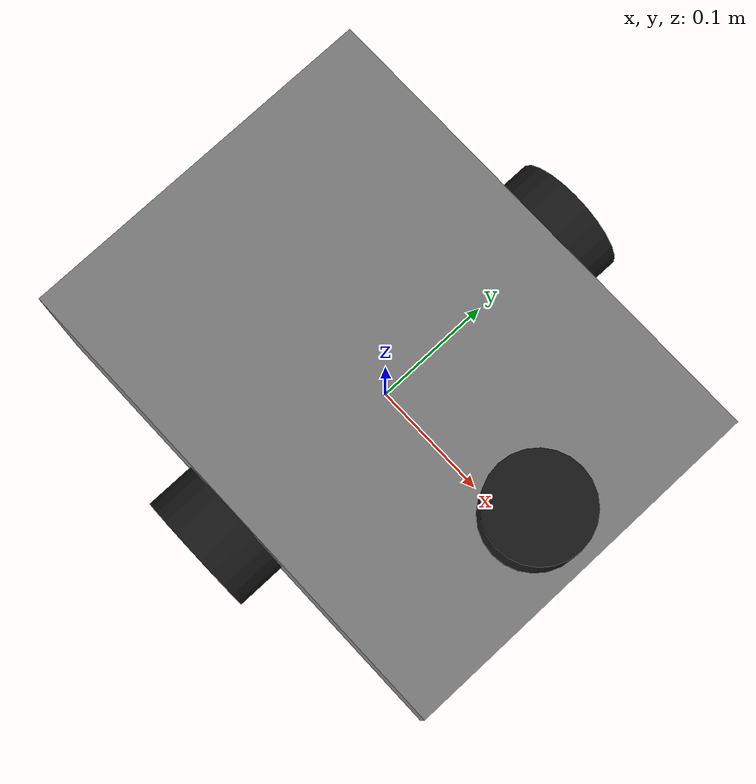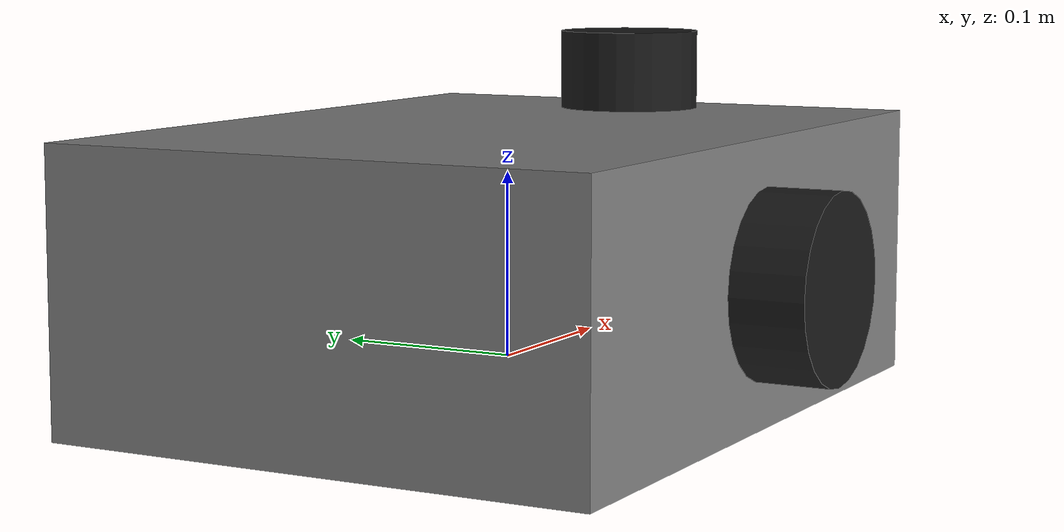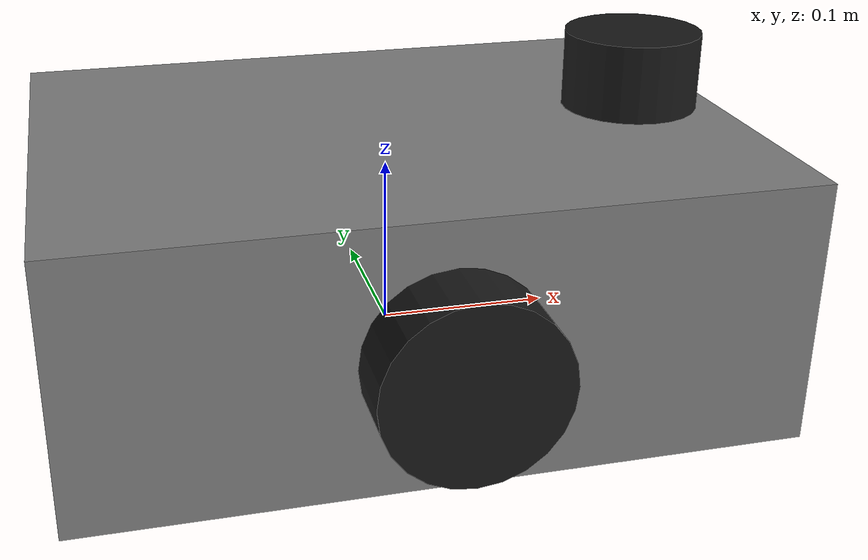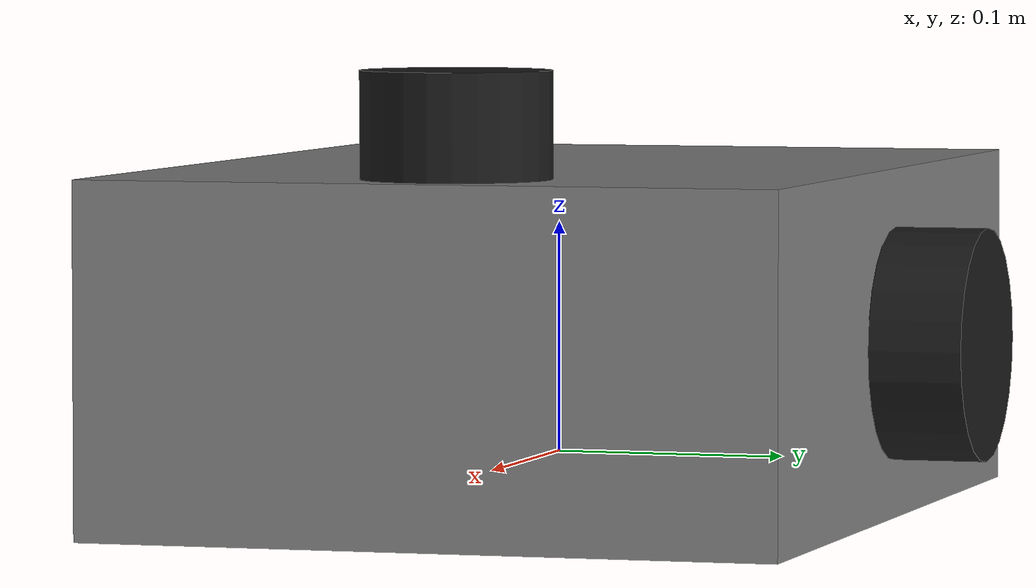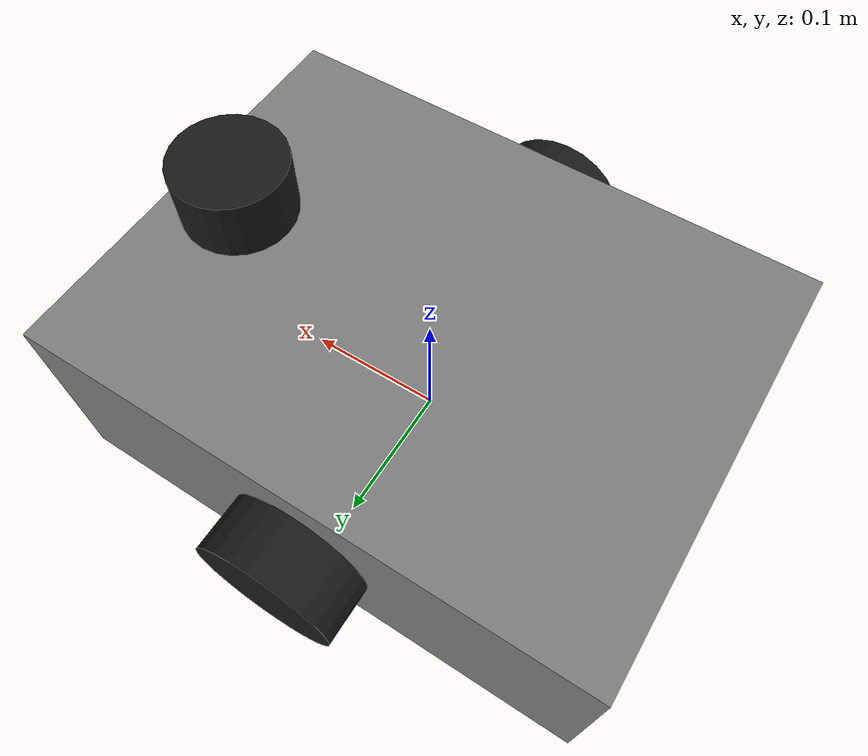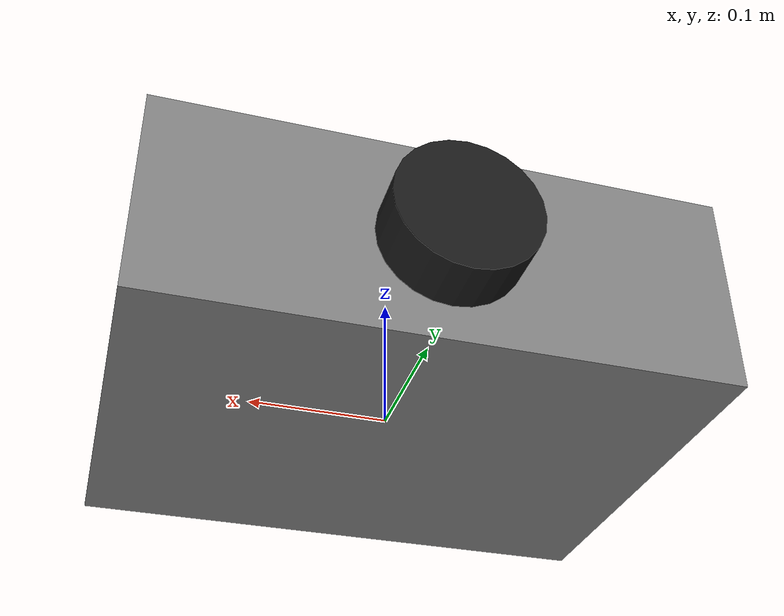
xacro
<?xml version="1.0"?>
<robot xmlns:xacro="http://www.ros.org/wiki/xacro" name="amr_robot">

  <xacro:include filename="$(find amr_description)/urdf/base.xacro"/>
  <xacro:include filename="$(find amr_description)/urdf/lidar.xacro"/>
  <xacro:include filename="$(find amr_description)/urdf/imu.xacro"/>

  <!-- Base properties -->
  <xacro:property name="base_width"  value="0.30"/>
  <xacro:property name="base_length" value="0.40"/>
  <xacro:property name="base_height" value="0.15"/>
  <xacro:property name="wheel_radius" value="0.05"/>
  <xacro:property name="wheel_width"  value="0.04"/>

  <!-- Base link -->
  <link name="base_footprint"/>

  <joint name="base_joint" type="fixed">
    <parent link="base_footprint"/>
    <child link="base_link"/>
    <origin xyz="0 0 ${wheel_radius}" rpy="0 0 0"/>
  </joint>

  <link name="base_link">
    <visual>
      <geometry>
        <box size="${base_length} ${base_width} ${base_height}"/>
      </geometry>
      <material name="grey"><color rgba="0.5 0.5 0.5 1"/></material>
    </visual>
    <collision>
      <geometry>
        <box size="${base_length} ${base_width} ${base_height}"/>
      </geometry>
    </collision>
    <inertial>
      <mass value="5.0"/>
      <inertia ixx="0.05" ixy="0" ixz="0" iyy="0.08" iyz="0" izz="0.1"/>
    </inertial>
  </link>

  <!-- Wheels -->
  <xacro:wheel prefix="left"  reflect="1"/>
  <xacro:wheel prefix="right" reflect="-1"/>

  <!-- LiDAR sensor -->
  <xacro:lidar_sensor parent="base_link" xyz="0.15 0 ${base_height/2 + 0.02}"/>

  <!-- IMU sensor -->
  <xacro:imu_sensor parent="base_link" xyz="0 0 0"/>

  <!-- Differential drive plugin (Gazebo Harmonic / gz-sim) -->
  <gazebo>
    <plugin filename="gz-sim-diff-drive-system" name="gz::sim::systems::DiffDrive">
      <left_joint>wheel_left_joint</left_joint>
      <right_joint>wheel_right_joint</right_joint>
      <wheel_separation>${base_width + wheel_width}</wheel_separation>
      <wheel_radius>${wheel_radius}</wheel_radius>
      <max_linear_acceleration>1.0</max_linear_acceleration>
      <topic>/cmd_vel</topic>
      <odom_topic>/odom</odom_topic>
      <tf_topic>/model/amr_robot/tf</tf_topic>
      <frame_id>odom</frame_id>
      <child_frame_id>base_footprint</child_frame_id>
      <odom_publish_frequency>20</odom_publish_frequency>
    </plugin>
    <plugin filename="gz-sim-joint-state-publisher-system" name="gz::sim::systems::JointStatePublisher">
      <topic>/joint_states</topic>
    </plugin>
  </gazebo>

</robot>

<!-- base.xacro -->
<robot xmlns:xacro="http://www.ros.org/wiki/xacro">

  <xacro:macro name="wheel" params="prefix reflect">
    <joint name="wheel_${prefix}_joint" type="continuous">
      <parent link="base_link"/>
      <child link="wheel_${prefix}_link"/>
      <origin xyz="0 ${reflect * (base_width/2 + wheel_width/2)} 0" rpy="${-pi/2} 0 0"/>
      <axis xyz="0 0 1"/>
    </joint>

    <link name="wheel_${prefix}_link">
      <visual>
        <geometry><cylinder radius="${wheel_radius}" length="${wheel_width}"/></geometry>
        <material name="black"><color rgba="0.1 0.1 0.1 1"/></material>
      </visual>
      <collision>
        <geometry><cylinder radius="${wheel_radius}" length="${wheel_width}"/></geometry>
      </collision>
      <inertial>
        <mass value="0.5"/>
        <inertia ixx="0.001" ixy="0" ixz="0" iyy="0.001" iyz="0" izz="0.001"/>
      </inertial>
    </link>
  </xacro:macro>

</robot>

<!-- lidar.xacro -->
<robot xmlns:xacro="http://www.ros.org/wiki/xacro">

  <xacro:macro name="lidar_sensor" params="parent xyz">
    <joint name="lidar_joint" type="fixed">
      <parent link="${parent}"/>
      <child link="lidar_link"/>
      <origin xyz="${xyz}" rpy="0 0 0"/>
    </joint>

    <link name="lidar_link">
      <visual>
        <geometry><cylinder radius="0.04" length="0.05"/></geometry>
        <material name="black"><color rgba="0.1 0.1 0.1 1"/></material>
      </visual>
      <collision>
        <geometry><cylinder radius="0.04" length="0.05"/></geometry>
      </collision>
      <inertial>
        <mass value="0.2"/>
        <inertia ixx="0.001" ixy="0" ixz="0" iyy="0.001" iyz="0" izz="0.001"/>
      </inertial>
    </link>

    <gazebo reference="lidar_link">
      <sensor type="gpu_lidar" name="lidar_sensor">
        <pose>0 0 0 0 0 0</pose>
        <topic>/scan</topic>
        <gz_frame_id>lidar_link</gz_frame_id>
        <visualize>false</visualize>
        <always_on>true</always_on>
        <update_rate>10</update_rate>
        <lidar>
          <scan>
            <horizontal>
              <samples>360</samples>
              <resolution>1</resolution>
              <min_angle>-3.14159</min_angle>
              <max_angle>3.14159</max_angle>
            </horizontal>
          </scan>
          <range>
            <min>0.12</min>
            <max>12.0</max>
            <resolution>0.01</resolution>
          </range>
          <noise>
            <type>gaussian</type>
            <mean>0.0</mean>
            <stddev>0.01</stddev>
          </noise>
        </lidar>
      </sensor>
    </gazebo>
  </xacro:macro>

</robot>

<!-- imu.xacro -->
<robot xmlns:xacro="http://www.ros.org/wiki/xacro">

  <xacro:macro name="imu_sensor" params="parent xyz">
    <joint name="imu_joint" type="fixed">
      <parent link="${parent}"/>
      <child link="imu_link"/>
      <origin xyz="${xyz}" rpy="0 0 0"/>
    </joint>

    <link name="imu_link">
      <visual>
        <geometry><box size="0.02 0.02 0.02"/></geometry>
        <material name="red"><color rgba="0.8 0.1 0.1 1"/></material>
      </visual>
      <inertial>
        <mass value="0.05"/>
        <inertia ixx="1e-5" ixy="0" ixz="0" iyy="1e-5" iyz="0" izz="1e-5"/>
      </inertial>
    </link>

    <gazebo reference="imu_link">
      <sensor type="imu" name="imu_sensor">
        <topic>/imu</topic>
        <gz_frame_id>imu_link</gz_frame_id>
        <always_on>true</always_on>
        <update_rate>50</update_rate>
      </sensor>
    </gazebo>
  </xacro:macro>

</robot>
